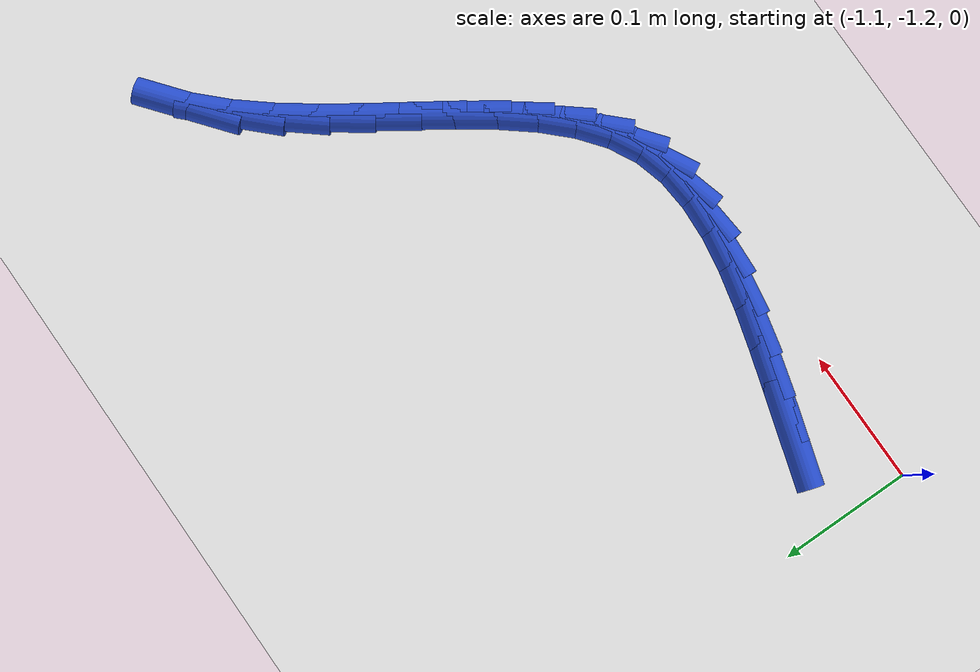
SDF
<sdf version="1.6">
 <world name="default">
  <model name="ground_plane">
   <static>1</static>
   <link name="link">
    <collision name="collision">
     <geometry><plane><normal>0 0 1</normal><size>100 100</size></plane></geometry>
     <surface><friction><ode><mu>100</mu><mu2>50</mu2></ode></friction></surface>
    </collision>
    <visual name="visual">
     <cast_shadows>0</cast_shadows>
     <geometry><plane><normal>0 0 1</normal><size>100 100</size></plane></geometry>
     <material>
      <script><uri>file://media/materials/scripts/gazebo.material</uri><name>Gazebo/WhiteGlow</name></script>
     </material>
    </visual>
   </link>
  </model>
  <model name="line">
   <link name="link_181">
    <pose>-1.031426771629697 -1.1519146992446263 0.01 0 1.57 -0.2989089911880135</pose>
    <collision name="collision">
     <geometry><cylinder><radius>0.01</radius><length>0.08</length></cylinder></geometry>
    </collision>
    <visual name="visual">
     <material>
      <script><name>Gazebo/Blue</name><uri>file://media/materials/scripts/gazebo.material</uri></script>
     </material>
     <geometry><cylinder><radius>0.01</radius><length>0.08</length></cylinder></geometry>
    </visual>
   </link>
   <link name="link_182">
    <pose>-1.0003013103742668 -1.161505737663605 0.01 0 1.57 -0.29655233911824047</pose>
    <collision name="collision">
     <geometry><cylinder><radius>0.01</radius><length>0.08</length></cylinder></geometry>
    </collision>
    <visual name="visual">
     <material>
      <script><name>Gazebo/Blue</name><uri>file://media/materials/scripts/gazebo.material</uri></script>
     </material>
     <geometry><cylinder><radius>0.01</radius><length>0.08</length></cylinder></geometry>
    </visual>
   </link>
   <link name="link_183">
    <pose>-0.9696922235381004 -1.170858732737663 0.01 0 1.57 -0.2743712688277335</pose>
    <collision name="collision">
     <geometry><cylinder><radius>0.01</radius><length>0.08</length></cylinder></geometry>
    </collision>
    <visual name="visual">
     <material>
      <script><name>Gazebo/Blue</name><uri>file://media/materials/scripts/gazebo.material</uri></script>
     </material>
     <geometry><cylinder><radius>0.01</radius><length>0.08</length></cylinder></geometry>
    </visual>
   </link>
   <link name="link_184">
    <pose>-0.9397809335771267 -1.1792778621057454 0.01 0 1.57 -0.22973138942728474</pose>
    <collision name="collision">
     <geometry><cylinder><radius>0.01</radius><length>0.08</length></cylinder></geometry>
    </collision>
    <visual name="visual">
     <material>
      <script><name>Gazebo/Blue</name><uri>file://media/materials/scripts/gazebo.material</uri></script>
     </material>
     <geometry><cylinder><radius>0.01</radius><length>0.08</length></cylinder></geometry>
    </visual>
   </link>
   <link name="link_185">
    <pose>-0.9107488629472741 -1.1860673034067977 0.01 0 1.57 -0.15825444372332065</pose>
    <collision name="collision">
     <geometry><cylinder><radius>0.01</radius><length>0.08</length></cylinder></geometry>
    </collision>
    <visual name="visual">
     <material>
      <script><name>Gazebo/Blue</name><uri>file://media/materials/scripts/gazebo.material</uri></script>
     </material>
     <geometry><cylinder><radius>0.01</radius><length>0.08</length></cylinder></geometry>
    </visual>
   </link>
   <link name="link_186">
    <pose>-0.8827774341044738 -1.1905312342797651 0.01 0 1.57 -0.05391822337656688</pose>
    <collision name="collision">
     <geometry><cylinder><radius>0.01</radius><length>0.08</length></cylinder></geometry>
    </collision>
    <visual name="visual">
     <material>
      <script><name>Gazebo/Blue</name><uri>file://media/materials/scripts/gazebo.material</uri></script>
     </material>
     <geometry><cylinder><radius>0.01</radius><length>0.08</length></cylinder></geometry>
    </visual>
   </link>
   <link name="link_187">
    <pose>-0.8560480695046536 -1.1919738323635927 0.01 0 1.57 0.08964167571104753</pose>
    <collision name="collision">
     <geometry><cylinder><radius>0.01</radius><length>0.08</length></cylinder></geometry>
    </collision>
    <visual name="visual">
     <material>
      <script><name>Gazebo/Blue</name><uri>file://media/materials/scripts/gazebo.material</uri></script>
     </material>
     <geometry><cylinder><radius>0.01</radius><length>0.08</length></cylinder></geometry>
    </visual>
   </link>
   <link name="link_188">
    <pose>-0.8307421916037434 -1.1896992752972264 0.01 0 1.57 0.27501325089188045</pose>
    <collision name="collision">
     <geometry><cylinder><radius>0.01</radius><length>0.08</length></cylinder></geometry>
    </collision>
    <visual name="visual">
     <material>
      <script><name>Gazebo/Blue</name><uri>file://media/materials/scripts/gazebo.material</uri></script>
     </material>
     <geometry><cylinder><radius>0.01</radius><length>0.08</length></cylinder></geometry>
    </visual>
   </link>
   <link name="link_189">
    <pose>-0.8070412228576718 -1.183011740719611 0.01 0 1.57 0.4864386531534912</pose>
    <collision name="collision">
     <geometry><cylinder><radius>0.01</radius><length>0.08</length></cylinder></geometry>
    </collision>
    <visual name="visual">
     <material>
      <script><name>Gazebo/Blue</name><uri>file://media/materials/scripts/gazebo.material</uri></script>
     </material>
     <geometry><cylinder><radius>0.01</radius><length>0.08</length></cylinder></geometry>
    </visual>
   </link>
   <link name="link_190">
    <pose>-0.7850658137085443 -1.1713906556233202 0.01 0 1.57 0.6670288457111336</pose>
    <collision name="collision">
     <geometry><cylinder><radius>0.01</radius><length>0.08</length></cylinder></geometry>
    </collision>
    <visual name="visual">
     <material>
      <script><name>Gazebo/Blue</name><uri>file://media/materials/scripts/gazebo.material</uri></script>
     </material>
     <geometry><cylinder><radius>0.01</radius><length>0.08</length></cylinder></geometry>
    </visual>
   </link>
   <link name="link_191">
    <pose>-0.7646029630481604 -1.1552776040013062 0.01 0 1.57 0.7996576924132422</pose>
    <collision name="collision">
     <geometry><cylinder><radius>0.01</radius><length>0.08</length></cylinder></geometry>
    </collision>
    <visual name="visual">
     <material>
      <script><name>Gazebo/Blue</name><uri>file://media/materials/scripts/gazebo.material</uri></script>
     </material>
     <geometry><cylinder><radius>0.01</radius><length>0.08</length></cylinder></geometry>
    </visual>
   </link>
   <link name="link_192">
    <pose>-0.7453257629147686 -1.1354426450969273 0.01 0 1.57 0.8910093584133812</pose>
    <collision name="collision">
     <geometry><cylinder><radius>0.01</radius><length>0.08</length></cylinder></geometry>
    </collision>
    <visual name="visual">
     <material>
      <script><name>Gazebo/Blue</name><uri>file://media/materials/scripts/gazebo.material</uri></script>
     </material>
     <geometry><cylinder><radius>0.01</radius><length>0.08</length></cylinder></geometry>
    </visual>
   </link>
   <link name="link_193">
    <pose>-0.7269072075520583 -1.1126561201654823 0.01 0 1.57 0.9491476987714468</pose>
    <collision name="collision">
     <geometry><cylinder><radius>0.01</radius><length>0.08</length></cylinder></geometry>
    </collision>
    <visual name="visual">
     <material>
      <script><name>Gazebo/Blue</name><uri>file://media/materials/scripts/gazebo.material</uri></script>
     </material>
     <geometry><cylinder><radius>0.01</radius><length>0.08</length></cylinder></geometry>
    </visual>
   </link>
   <link name="link_194">
    <pose>-0.7090202912037179 -1.0876883704622673 0.01 0 1.57 0.9802646312307545</pose>
    <collision name="collision">
     <geometry><cylinder><radius>0.01</radius><length>0.08</length></cylinder></geometry>
    </collision>
    <visual name="visual">
     <material>
      <script><name>Gazebo/Blue</name><uri>file://media/materials/scripts/gazebo.material</uri></script>
     </material>
     <geometry><cylinder><radius>0.01</radius><length>0.08</length></cylinder></geometry>
    </visual>
   </link>
   <link name="link_195">
    <pose>-0.6913380081134365 -1.06130973724258 0.01 0 1.57 0.9881455288476668</pose>
    <collision name="collision">
     <geometry><cylinder><radius>0.01</radius><length>0.08</length></cylinder></geometry>
    </collision>
    <visual name="visual">
     <material>
      <script><name>Gazebo/Blue</name><uri>file://media/materials/scripts/gazebo.material</uri></script>
     </material>
     <geometry><cylinder><radius>0.01</radius><length>0.08</length></cylinder></geometry>
    </visual>
   </link>
   <link name="link_196">
    <pose>-0.673533352524903 -1.034290561761717 0.01 0 1.57 0.9744018698152548</pose>
    <collision name="collision">
     <geometry><cylinder><radius>0.01</radius><length>0.08</length></cylinder></geometry>
    </collision>
    <visual name="visual">
     <material>
      <script><name>Gazebo/Blue</name><uri>file://media/materials/scripts/gazebo.material</uri></script>
     </material>
     <geometry><cylinder><radius>0.01</radius><length>0.08</length></cylinder></geometry>
    </visual>
   </link>
   <link name="link_197">
    <pose>-0.6552793186818061 -1.0074011852749756 0.01 0 1.57 0.9387573546039407</pose>
    <collision name="collision">
     <geometry><cylinder><radius>0.01</radius><length>0.08</length></cylinder></geometry>
    </collision>
    <visual name="visual">
     <material>
      <script><name>Gazebo/Blue</name><uri>file://media/materials/scripts/gazebo.material</uri></script>
     </material>
     <geometry><cylinder><radius>0.01</radius><length>0.08</length></cylinder></geometry>
    </visual>
   </link>
   <link name="link_198">
    <pose>-0.6362489008278347 -0.9814119490376526 0.01 0 1.57 0.8792656108178961</pose>
    <collision name="collision">
     <geometry><cylinder><radius>0.01</radius><length>0.08</length></cylinder></geometry>
    </collision>
    <visual name="visual">
     <material>
      <script><name>Gazebo/Blue</name><uri>file://media/materials/scripts/gazebo.material</uri></script>
     </material>
     <geometry><cylinder><radius>0.01</radius><length>0.08</length></cylinder></geometry>
    </visual>
   </link>
   <link name="link_199">
    <pose>-0.6161150932066779 -0.9570931943050452 0.01 0 1.57 0.7926198014041363</pose>
    <collision name="collision">
     <geometry><cylinder><radius>0.01</radius><length>0.08</length></cylinder></geometry>
    </collision>
    <visual name="visual">
     <material>
      <script><name>Gazebo/Blue</name><uri>file://media/materials/scripts/gazebo.material</uri></script>
     </material>
     <geometry><cylinder><radius>0.01</radius><length>0.08</length></cylinder></geometry>
    </visual>
   </link>
   <link name="link_200">
    <pose>-0.5945508900620239 -0.9352152623324501 0.01 0 1.57 0.6749888683211284</pose>
    <collision name="collision">
     <geometry><cylinder><radius>0.01</radius><length>0.08</length></cylinder></geometry>
    </collision>
    <visual name="visual">
     <material>
      <script><name>Gazebo/Blue</name><uri>file://media/materials/scripts/gazebo.material</uri></script>
     </material>
     <geometry><cylinder><radius>0.01</radius><length>0.08</length></cylinder></geometry>
    </visual>
   </link>
  </model>
 </world>
</sdf>
